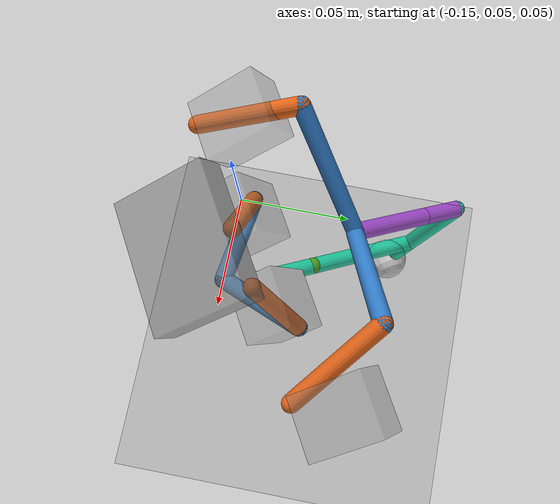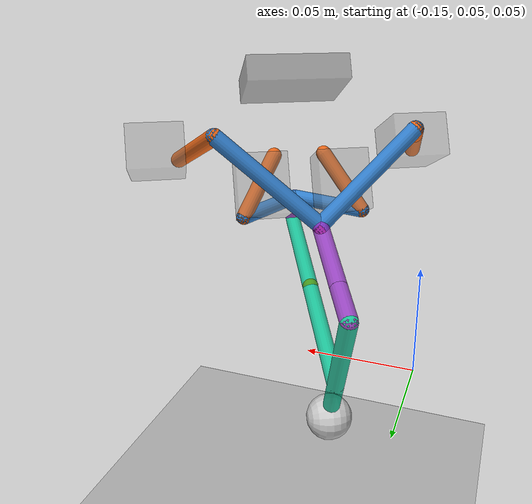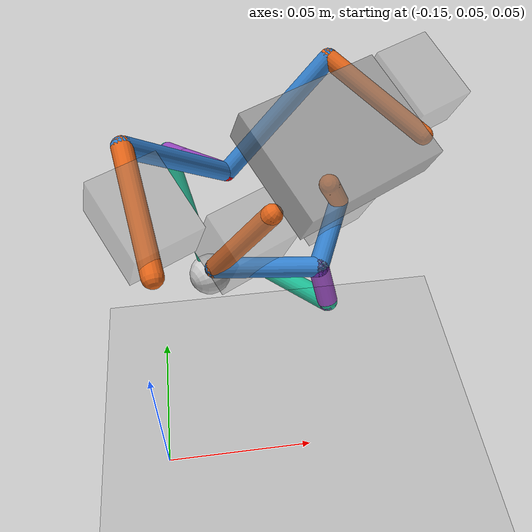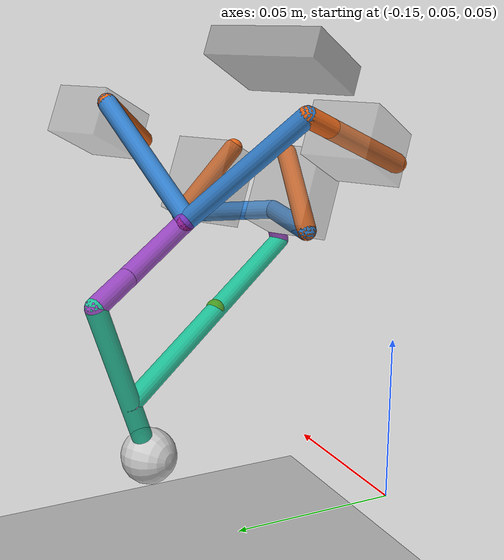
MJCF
<mujoco model="faithful_primitive_single_finger">

  <compiler angle="degree" coordinate="local" eulerseq="xyz"/>

  <option timestep="0.0005" iterations="200" tolerance="1e-8" solver="Newton">

    <flag contact="disable"/>

  </option>

  <default>

    <!-- Base defaults for all joints -->
    <joint damping="0.5" armature="0.001" frictionloss="0.03"/>

    <!-- Silicone tip contact parameters -->
    <default class="silicone_tip">

      <geom type="sphere" size="0.0082" friction="2.0 0.02 0.0001" solref="0.0005 200.0" solimp="0.99 0.995 0.0001" contype="1" conaffinity="1" condim="6" priority="1"/>

    </default>

    <geom type="capsule" rgba="0.7 0.7 0.7 0.6" contype="0" conaffinity="0"/>

  </default>

  <asset>

    <texture name="skybox" type="skybox" builtin="gradient" rgb1="0.3 0.5 0.7" rgb2="0 0 0" width="512" height="3072"/>

    <texture name="groundplane" type="2d" builtin="checker" rgb1="0.2 0.3 0.4" rgb2="0.1 0.2 0.3" width="100" height="100"/>

    <material name="groundplane" texture="groundplane" texrepeat="10 10"/>

  </asset>

  <worldbody>

    <geom name="ground" type="plane" size="0 0 1" pos="0 0 0" material="groundplane" condim="1"/>

    <light directional="true" diffuse=".4 .4 .4" specular="0.1 0.1 0.1" pos="0 0 5.0" dir="0 0 -1"/>

    <light directional="true" diffuse=".6 .6 .6" specular="0.2 0.2 0.2" pos="0 0 4" dir="0 0 -1"/>

    <body name="hand_base" pos="0 0 0.17797187" euler="0 180 0">

      <body name="finger_alpha" pos="0.06105 0.0 0.0" euler="0 0 60">

        <body name="body_platform" pos="0.066699 -0.0002 -0.00038509" quat="0.6889820653006324 0.15906563768307502 0.15906622196486023 0.6889845960777189">

          <geom name="geom_platform" type="box" pos="0 0 0" size="0.02 0.015 0.005" rgba="0.5 0.5 0.5 0.6" contype="0" conaffinity="0"/>

          <body name="body_1_1" pos="0.047 0 0.0305" quat="0.7071067811865462 0.7071067811865488 0.0 0.0">

            <inertial mass="0.007" pos="-0.005907 0 0.014178" fullinertia="1.042e-6 1.101e-6 0.225e-6 0 0.294e-6 0"/>

            <!-- Actuated joint: high damping for servo position hold -->
            <joint name="joint_1_1" type="hinge" pos="0 0 0" axis="-1 0 0" limited="true" range="-33 213" damping="100" frictionloss="0.08" armature="0.012"/>

            <geom name="geom_1_1_proximal" type="capsule" fromto="0 0 0  -0.011667 0 0.035337" size="0.003" rgba="0.9 0.4 0.1 0.9" contype="0" conaffinity="0"/>

            <geom name="servo_1_1_visual" type="box" pos="0.008 0 0.015" size="0.010 0.008 0.012" rgba="0.5 0.5 0.5 0.3" contype="0" conaffinity="0"/>

            <body name="body_1_2" pos="-0.0116672618895781 0 0.0353370093578838" quat="0.8085158559973773 -0.4470520117325275 -0.33489823294780874 -0.18517500634579043">

              <inertial mass="0.008" pos="-0.008956 -8e-6 0.019449" fullinertia="0.83e-6 1.693e-6 1e-6 0 0.748e-6 0"/>

              <!-- Passive joint: higher damping for stability -->
              <joint name="joint_1_2" type="hinge" pos="0 0 0" axis="1 0 0" limited="true" range="-60 60" damping="5" frictionloss="0.05"/>

              <geom name="geom_1_2_distal" type="capsule" fromto="0 0 0  -0.03045 0 0.03672" size="0.003" rgba="0.2 0.5 0.8 0.9" contype="0" conaffinity="0"/>

              <site name="site_1_connect" pos="-0.03045 0 0.03672" size="0.003" rgba="1 0 0 1"/>

            </body>

          </body>

          <!-- ========================================
               Actuator 2: Outer proximal joint (side A)
               ======================================== -->
          <body name="body_2_1" pos="0.01 0 0.0305">

            <inertial mass="0.005" pos="0.000519 0 0.01114" fullinertia="0.479e-6 0.574e-6 0.179e-6 0 -0.138e-6 0"/>

            <joint name="joint_2_1" type="hinge" pos="0 0 0" axis="1 0 0" limited="true" range="-120 120" damping="100" frictionloss="0.08" armature="0.012"/>

            <geom name="geom_2_1_proximal" type="capsule" fromto="0 0 0  0.013617 0 0.023617" size="0.003" rgba="0.9 0.4 0.1 0.9" contype="0" conaffinity="0"/>

            <geom name="servo_2_1_visual" type="box" pos="0.006 0 0.012" size="0.010 0.008 0.012" rgba="0.5 0.5 0.5 0.3" contype="0" conaffinity="0"/>

            <!-- Passive distal joint (outer CSPM link A) -->
            <body name="body_2_2" pos="0.013617 0 0.023617" quat="0.8878198148494888 0.10586792529977154 0.36774869771815494 0.2555950979184514">

              <inertial mass="0.003" pos="3e-6 9.968e-3 -6.271e-3" fullinertia="0.448e-6 0.321e-6 0.177e-6 0 0 0.153e-6"/>

              <joint name="joint_2_2" type="hinge" pos="0 0 0" axis="0 0 1" limited="true" range="-60 60" damping="5" frictionloss="0.05"/>

              <geom name="geom_2_2_distal" type="capsule" fromto="0 0 0  0 0.019411 -0.023077" size="0.003" rgba="0.2 0.5 0.8 0.9" contype="0" conaffinity="0"/>

              <site name="site_2_connect" pos="0 0.01941147952 -0.02307689935" size="0.003" rgba="1 0 0 0.2"/>

            </body>

          </body>

          <!-- ========================================
               Actuator 3: Outer proximal joint (side B)
               ======================================== -->
          <body name="body_3_1" pos="-0.010 0 0.0305">

            <inertial mass="0.005" pos="-0.000256 0 0.01107" fullinertia="0.448e-6 0.574e-6 0.172e-6 0 0.131e-6 0"/>

            <joint name="joint_3_1" type="hinge" pos="0 0 0" axis="1 0 0" limited="true" range="-120 120" damping="100" frictionloss="0.08" armature="0.012"/>

            <geom name="geom_3_1_proximal" type="capsule" fromto="0 0 0  -0.013617 0 0.023617" size="0.003" rgba="0.9 0.4 0.1 0.9" contype="0" conaffinity="0"/>

            <geom name="servo_3_1_visual" type="box" pos="-0.006 0 0.012" size="0.010 0.008 0.012" rgba="0.5 0.5 0.5 0.3" contype="0" conaffinity="0"/>

            <!-- Passive distal joint (outer CSPM link B) -->
            <body name="body_3_2" pos="-0.0136170093578839 0 0.0236170093578839" quat="0.8878205535117507 0.10587030883141682 -0.367747314218155 -0.255593535433435">

              <inertial mass="0.003" pos="0 10.069e-3 -7.195e-3" fullinertia="0.526e-6 0.34e-6 0.247e-6 0 0 0.236e-6"/>

              <joint name="joint_3_2" type="hinge" pos="0 0 0" axis="0 0 1" limited="true" range="-60 60" damping="5" frictionloss="0.05"/>

              <geom name="geom_3_2_distal" type="capsule" fromto="0 0 0  0 0.019411 -0.023075" size="0.003" rgba="0.2 0.5 0.8 0.9" contype="0" conaffinity="0"/>

              <site name="site_3_connect" pos="0 0.0194108877 -0.02307493063" size="0.003" rgba="1 1 1 0.4"/>

              <body name="cspm23_adaptor" pos="0 0.02206 -0.021667" quat="0.7664016139459412 -0.46050129008309315 0.2306580916677669 0.38388015411199305">

                <inertial mass="0.003" pos="0 0 7.02e-3" diaginertia="0.082e-6 0.08e-6 0.062e-6"/>

                <joint name="cspm23_adaptor_joint" type="hinge" pos="0 0 0" axis="0 0 1" limited="true" range="-120 120" damping="3" frictionloss="0.05"/>

                <geom name="geom_cspm23_to_outer_cspm" type="capsule" fromto="0 0 -0.003  0 0 0.009" size="0.003" rgba="0.6 0.2 0.8 0.8" contype="0" conaffinity="0"/>

                <body name="paralle_long_link" pos="0 0 0.009" quat="0.707106607039899 0.0004936760326029743 -0.7071066106666457 -0.0004936760326030298">

                  <inertial mass="0.004" pos="-1.12e-3 -41.772e-3 0" diaginertia="3.16e-6 0.017e-6 3.172e-6"/>

                  <joint name="paralle_long_joint" type="hinge" pos="0 0 0" axis="0 0 1" limited="true" range="-60 60" damping="3" frictionloss="0.05"/>

                  <geom name="geom_paralle_long" type="capsule" fromto="0 0 0  0 -0.085 0" size="0.003" rgba="0.0 0.8 0.6 0.8" contype="0" conaffinity="0"/>

                  <site name="site_parallel_long_connect" pos="0 -0.085 0" size="0.003" rgba="1 0.6 1 0.8"/>

                  <site name="site_parallel_long_connect_2" pos="0 -0.040 0" size="0.003" rgba="1 0.6 0 0.8"/>

                </body>

              </body>

            </body>

          </body>

          <!-- ========================================
               Actuator 4: Inner proximal joint (opposite)
               ======================================== -->
          <body name="body_4_1" pos="-0.047 0 0.0305" quat="0.7071067811865462 0.7071067811865488 0.0 0.0">

            <inertial mass="0.007" pos="0.005907 0 0.014178" fullinertia="1.042e-6 1.101e-6 0.225e-6 0 -0.294e-6 0"/>

            <joint name="joint_4_1" type="hinge" pos="0 0 0" axis="-1 0 0" limited="true" range="-33 213" damping="100" frictionloss="0.08" armature="0.012"/>

            <geom name="geom_4_1_proximal" type="capsule" fromto="0 0 0  0.011667 0 0.035337" size="0.003" rgba="0.9 0.4 0.1 0.9" contype="0" conaffinity="0"/>

            <geom name="servo_4_1_visual" type="box" pos="0.006 0 0.015" size="0.010 0.008 0.012" rgba="0.5 0.5 0.5 0.3" contype="0" conaffinity="0"/>

            <body name="body_4_2" pos="0.0116672618895781 0 0.0353370093578838" quat="0.8085158559973775 -0.4470520117325276 0.3348982329478083 0.18517500634579018">

              <inertial mass="0.021" pos="0.013361 0 42.171e-3" fullinertia="8.646e-6 10.369e-6 2.697e-6 0 -3.173e-6 0"/>

              <joint name="joint_4_2" type="hinge" pos="0 0 0" axis="1 0 0" limited="true" range="-60 60" damping="5" frictionloss="0.05"/>

              <geom name="geom_4_2_distal" type="capsule" fromto="0 0 0  0.03033 0 0.03694" size="0.003" rgba="0.2 0.5 0.8 0.9" contype="0" conaffinity="0"/>

              <site name="site_4_connect" pos="0.03033 0 0.03694" size="0.003" rgba="1 0 0 1"/>

              <body name="cspm14_adaptor" pos="0.016605179614597 0 0.0627554939638426" quat="0.9207201443783664 0.07634007027212154 -0.2295613147753419 -0.3061832983122107">

                <inertial mass="0.002" pos="0 -0.088e-3 4.631e-3" fullinertia="0.104e-6 0.103e-6 0.033e-6 0 0 0.001e-6"/>

                <joint name="cspm14_adaptor_joint" type="hinge" pos="0 0 0" axis="0 0 1" limited="true" range="-120 120" damping="3" frictionloss="0.05"/>

                <geom name="geom_cspm14_to_inner_cspm" type="capsule" fromto="0 0 -0.029  0 0 0" size="0.003" rgba="0.6 0.2 0.8 0.8" contype="0" conaffinity="0"/>

                <geom name="geom_cspm14_to_paralle_short" type="capsule" fromto="0 0 0  0 -0.000128 0.01421" size="0.003" rgba="0.6 0.2 0.8 0.8" contype="0" conaffinity="0"/>

                <body name="paralle_short_link" pos="0 -0.000128452409223868 0.01421" quat="0.7071006257529511 -0.0029504338299677357 0.7071006257529511 -0.0029504338299677357">

                  <inertial mass="0.012" pos="0.085e-3 34.705e-3 0" fullinertia="3.562e-6 0.328e-6 3.581e-6 0.014e-6 0 0"/>

                  <joint name="paralle_short_joint" type="hinge" pos="0 0 0" axis="0 0 1" limited="true" range="-60 60" damping="3" frictionloss="0.05"/>

                  <geom name="geom_paralle_short_main" type="capsule" fromto="0 0 0  0 0.054 0" size="0.003" rgba="0.0 0.8 0.6 0.8" contype="0" conaffinity="0"/>

                  <geom name="geom_paralle_short_offset" type="capsule" fromto="0 0.034 0  0.045 0.034 0" size="0.0021" rgba="0.8 0.2 0.6 0.7" contype="0" conaffinity="0"/>

                  <site name="site_parallel_short_connect" pos="0 0.034 0" size="0.003" rgba="1 1 0 0.8"/>

                  <site name="site_parallel_short_connect_2" pos="0.045 0.034 0" size="0.003" rgba="0.2 0.6 0 0.8"/>

                  <body name="distal_tip" pos="0 0.054 0" quat="1 0 0 0">

                    <inertial mass="0.046" pos="0 0 0" diaginertia="8.083e-6 8.080e-6 8.103e-6"/>

                    <geom name="tip_geom" class="silicone_tip" pos="0 0 0" type="sphere" rgba="0.8 0.8 0.8 1" mass="0.001"/>

                    <site name="tip" pos="0 0 0" euler="180 0 90" size="0.005" rgba="1 1 0 0.8" group="2"/>

                  </body>

                </body>

              </body>

            </body>

          </body>

        </body>

      </body>

    </body>

  </worldbody>

  <equality>

    <!-- Tighter CSPM inner constraint: reduced time constant for stiffer coupling -->
    <connect name="CSPM_inner" site1="site_1_connect" site2="site_4_connect" solref="0.000008 1" solimp="0.96 0.999 0.0001"/>

    <!-- Tighter CSPM outer constraint -->
    <connect name="CSPM_outer" site1="site_2_connect" site2="site_3_connect" solref="0.000008 1" solimp="0.96 0.999 0.0001"/>

    <!-- Tighter distal pivot constraint -->
    <connect name="Distal_pivot" site1="site_parallel_short_connect" site2="site_parallel_long_connect" solref="0.0003 1" solimp="0.99 0.999 0.001"/>

    <!-- Tighter distal axis constraint -->
    <connect name="Distal_axis" site1="site_parallel_short_connect_2" site2="site_parallel_long_connect_2" solref="0.0003 1" solimp="0.99 0.999 0.001"/>

  </equality>

  <actuator>

    <!-- XL330-M288 actuators with improved gains:
         kp=150 (+50%) for stiffer position tracking
         kv=8 (+60%) for better velocity damping
         ctrlrange unchanged (in radians) -->

    <position name="act_1_1" joint="joint_1_1" kp="150" kv="8" ctrllimited="true" ctrlrange="-0.576 3.72"/>

    <position name="act_2_1" joint="joint_2_1" kp="150" kv="8" ctrllimited="true" ctrlrange="-2.147 2.147"/>

    <position name="act_3_1" joint="joint_3_1" kp="150" kv="8" ctrllimited="true" ctrlrange="-2.147 2.147"/>

    <position name="act_4_1" joint="joint_4_1" kp="150" kv="8" ctrllimited="true" ctrlrange="-0.576 3.72"/>

  </actuator>

</mujoco>
